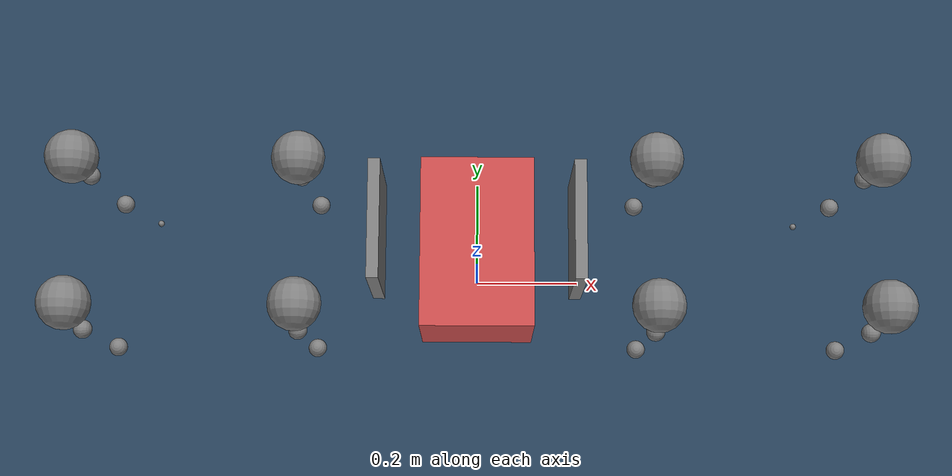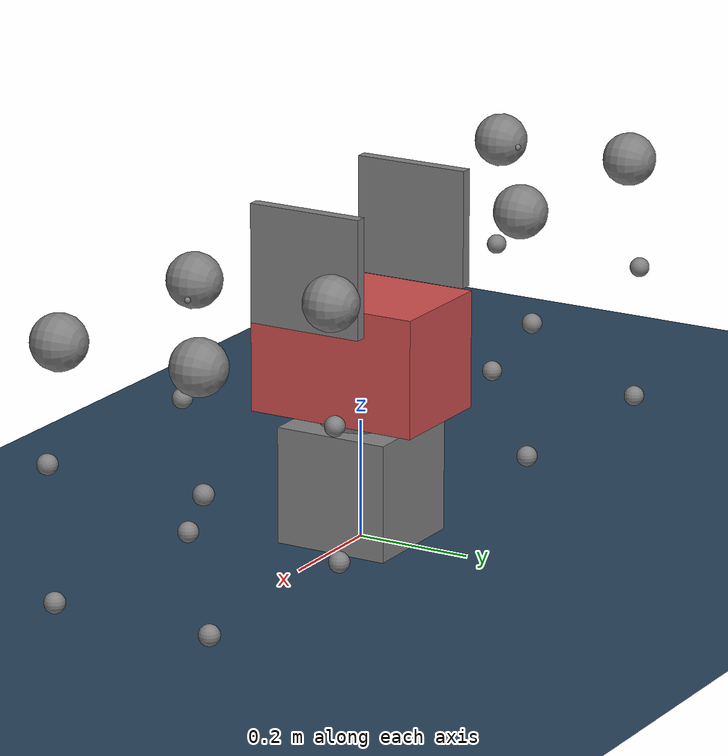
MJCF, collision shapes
<?xml version='1.0' encoding='UTF-8'?>
<mujoco model="go2 scene">
    <compiler angle="radian" meshdir="assets" autolimits="true" />
    <option iterations="2" ls_iterations="5" gravity="0.0 0.0 -9.81">
        <flag eulerdamp="disable" />
    </option>
    <statistic center="0 0 0.1" extent="0.8" />
    <visual>
        <headlight diffuse="0.6 0.6 0.6" ambient="0.3 0.3 0.3" specular="0 0 0" />
        <rgba haze="0.15 0.25 0.35 1" />
        <global azimuth="-130" elevation="-20" />
    </visual>
    <asset>
        <texture type="skybox" builtin="gradient" rgb1="0.3 0.5 0.7" rgb2="0 0 0" width="512"
            height="3072" />
        <texture type="2d" name="groundplane" builtin="checker" mark="edge" rgb1="0.2 0.3 0.4"
            rgb2="0.1 0.2 0.3" markrgb="0.8 0.8 0.8" width="300" height="300" />
        <material name="groundplane" texture="groundplane" texuniform="true" texrepeat="5 5"
            reflectance="0.2" />
        <material name="box_material" shininess="0.1" specular="0.5" roughness="0.3" />
    </asset>
    <default>
        <default class="go2">
            <geom friction="0.6" margin="0.001" condim="1" />
            <joint axis="0 1 0" damping="0.65" armature="0.01" />
            <default class="abduction">
                <joint axis="1 0 0" range="-1.0472 1.0472" />
            </default>
            <default class="hip">
                <default class="front_hip">
                    <joint range="-1.5708 3.4907" />
                </default>
                <default class="back_hip">
                    <joint range="-0.5236 4.5379" />
                </default>
            </default>
            <default class="knee">
                <joint range="-2.7227 -0.83776" />
            </default>
            <default class="visual">
                <geom type="mesh" contype="0" conaffinity="0" group="2" />
            </default>
            <default class="go2foot">
                <site group="1" pos="-0.002 0 -0.213" />
                <geom rgba="0.231373 0.380392 0.705882 1" />
            </default>
            <default class="collision">
                <geom group="3" contype="0" conaffinity="1" />
                <default class="foot">
                    <geom type="sphere" size="0.0175" pos="-0.002 0 -0.213" solimp="0.015 1 0.031"
                        friction="0.7 0.02 0.01" condim="3" />
                </default>
            </default>
        </default>
    </default>
    <asset>
        <material name="metal" rgba=".9 .95 .95 1" />
        <material name="black" rgba="0 0 0 1" />
        <material name="white" rgba="1 1 1 1" />
        <material name="gray" rgba="0.671705 0.692426 0.774270 1" />
        <mesh file="base_0.obj" />
        <mesh file="base_1.obj" />
        <mesh file="base_2.obj" />
        <mesh file="base_3.obj" />
        <mesh file="base_4.obj" />
        <mesh file="hip_0.obj" />
        <mesh file="hip_1.obj" />
        <mesh file="thigh_0.obj" />
        <mesh file="thigh_1.obj" />
        <mesh file="thigh_mirror_0.obj" />
        <mesh file="thigh_mirror_1.obj" />
        <mesh file="calf_0.obj" />
        <mesh file="calf_1.obj" />
        <mesh file="calf_mirror_0.obj" />
        <mesh file="calf_mirror_1.obj" />
        <mesh file="foot.obj" />
    </asset>
    <worldbody>
        <geom name="floor" size="0 0 0.05" type="plane" material="groundplane" />
        <body name="base_1" pos="-0.5 0 0.5" quat="1 0 0 0" childclass="go2">
            <inertial pos="0.021112 0 -0.005366" quat="-0.000543471 0.713435 -0.00173769 0.700719"
                mass="6.921" diaginertia="0.107027 0.0980771 0.0244531" />
            <joint name="base_free_joint_1" type="free" />
            <geom mesh="base_0" material="black" class="visual" />
            <geom mesh="base_1" material="black" class="visual" />
            <geom mesh="base_2" material="black" class="visual" />
            <geom mesh="base_3" material="white" class="visual" />
            <geom mesh="base_4" material="gray" class="visual" />
            <geom size="0.01 0.1 0.1" pos="0.33 0 0" type="box" class="collision" />
            <site name="imu_1" pos="-0.02557 0 0.04232" />
            <body name="FR_hip_1" pos="0.1934 -0.0465 0">
                <inertial pos="-0.0054 -0.00194 -0.000105"
                    quat="0.498237 0.505462 0.499245 0.497014" mass="0.678"
                    diaginertia="0.00088403 0.000596003 0.000479967" />
                <joint name="FR_hip_joint_1" class="abduction" />
                <geom mesh="hip_0" material="metal" class="visual" quat="4.63268e-05 1 0 0" />
                <geom mesh="hip_1" material="gray" class="visual" quat="4.63268e-05 1 0 0" />
                <body name="FR_thigh_1" pos="0 -0.0955 0">
                    <inertial pos="-0.00374 0.0223 -0.0327"
                        quat="0.551623 -0.0200632 0.0847635 0.829533" mass="1.152"
                        diaginertia="0.00594973 0.00584149 0.000878787" />
                    <joint name="FR_thigh_joint_1" class="front_hip" />
                    <geom mesh="thigh_mirror_0" material="metal" class="visual" />
                    <geom mesh="thigh_mirror_1" material="gray" class="visual" />
                    <body name="FR_calf_1" pos="0 0 -0.213">
                        <inertial pos="0.00629595 0.000622121 -0.141417"
                            quat="0.703508 -0.00450087 0.00154099 0.710672" mass="0.241352"
                            diaginertia="0.0014901 0.00146356 5.31397e-05" />
                        <joint name="FR_calf_joint_1" class="knee" />
                        <geom mesh="calf_mirror_0" material="gray" class="visual" />
                        <geom mesh="calf_mirror_1" material="black" class="visual" />
                        <geom pos="0 0 -0.213" mesh="foot" class="visual" material="black" />
                        <geom name="FR_1" class="foot" />
                        <site name="FR_foot_1" class="go2foot" />
                    </body>
                    <geom size="0.017 0.01225 0.017" pos="-0.015 0 -0.1955"
                        quat="0.707107 0 0.707107 0" class="collision" />
                </body>
                <geom size="0.046 0.02" pos="0 -0.08 0" quat="0.707107 0.707107 0 0"
                    class="collision" />
            </body>
            <body name="FL_hip_1" pos="0.1934 0.0465 0">
                <inertial pos="-0.0054 0.00194 -0.000105" quat="0.497014 0.499245 0.505462 0.498237"
                    mass="0.678" diaginertia="0.00088403 0.000596003 0.000479967" />
                <joint name="FL_hip_joint_1" class="abduction" />
                <geom mesh="hip_0" material="metal" class="visual" />
                <geom mesh="hip_1" material="gray" class="visual" />
                <body name="FL_thigh_1" pos="0 0.0955 0">
                    <inertial pos="-0.00374 -0.0223 -0.0327"
                        quat="0.829533 0.0847635 -0.0200632 0.551623" mass="1.152"
                        diaginertia="0.00594973 0.00584149 0.000878787" />
                    <joint name="FL_thigh_joint_1" class="front_hip" />
                    <geom mesh="thigh_0" material="metal" class="visual" />
                    <geom mesh="thigh_1" material="gray" class="visual" />
                    <body name="FL_calf_1" pos="0 0 -0.213">
                        <inertial pos="0.00629595 -0.000622121 -0.141417"
                            quat="0.710672 0.00154099 -0.00450087 0.703508" mass="0.241352"
                            diaginertia="0.0014901 0.00146356 5.31397e-05" />
                        <joint name="FL_calf_joint_1" class="knee" />
                        <geom mesh="calf_0" material="gray" class="visual" />
                        <geom mesh="calf_1" material="black" class="visual" />
                        <geom pos="0 0 -0.213" mesh="foot" class="visual" material="black" />
                        <geom name="FL_1" class="foot" />
                        <site name="FL_foot_1" class="go2foot" />
                    </body>
                    <geom size="0.017 0.01225 0.017" pos="-0.015 0 -0.1955"
                        quat="0.707107 0 0.707107 0" class="collision" />
                </body>
                <geom size="0.046 0.02" pos="0 0.08 0" quat="0.707107 0.707107 0 0"
                    class="collision" />
            </body>
            <body name="RR_hip_1" pos="-0.1934 -0.0465 0">
                <inertial pos="0.0054 -0.00194 -0.000105" quat="0.499245 0.497014 0.498237 0.505462"
                    mass="0.678" diaginertia="0.00088403 0.000596003 0.000479967" />
                <joint name="RR_hip_joint_1" class="abduction" />
                <geom mesh="hip_0" material="metal" class="visual"
                    quat="2.14617e-09 4.63268e-05 4.63268e-05 -1" />
                <geom mesh="hip_1" material="gray" class="visual"
                    quat="2.14617e-09 4.63268e-05 4.63268e-05 -1" />
                <body name="RR_thigh_1" pos="0 -0.0955 0">
                    <inertial pos="-0.00374 0.0223 -0.0327"
                        quat="0.551623 -0.0200632 0.0847635 0.829533" mass="1.152"
                        diaginertia="0.00594973 0.00584149 0.000878787" />
                    <joint name="RR_thigh_joint_1" class="back_hip" />
                    <geom mesh="thigh_mirror_0" material="metal" class="visual" />
                    <geom mesh="thigh_mirror_1" material="gray" class="visual" />
                    <body name="RR_calf_1" pos="0 0 -0.213">
                        <inertial pos="0.00629595 0.000622121 -0.141417"
                            quat="0.703508 -0.00450087 0.00154099 0.710672" mass="0.241352"
                            diaginertia="0.0014901 0.00146356 5.31397e-05" />
                        <joint name="RR_calf_joint_1" class="knee" />
                        <geom mesh="calf_mirror_0" material="gray" class="visual" />
                        <geom mesh="calf_mirror_1" material="black" class="visual" />
                        <geom pos="0 0 -0.213" mesh="foot" class="visual" material="black" />
                        <geom name="RR_1" class="foot" />
                        <site name="RR_foot_1" class="go2foot" />
                    </body>
                    <geom size="0.017 0.01225 0.017" pos="-0.015 0 -0.1955"
                        quat="0.707107 0 0.707107 0" class="collision" />
                </body>
                <geom size="0.046 0.02" pos="0 -0.08 0" quat="0.707107 0.707107 0 0"
                    class="collision" />
            </body>
            <body name="RL_hip_1" pos="-0.1934 0.0465 0">
                <inertial pos="0.0054 0.00194 -0.000105" quat="0.505462 0.498237 0.497014 0.499245"
                    mass="0.678" diaginertia="0.00088403 0.000596003 0.000479967" />
                <joint name="RL_hip_joint_1" class="abduction" />
                <geom mesh="hip_0" material="metal" class="visual" quat="4.63268e-05 0 1 0" />
                <geom mesh="hip_1" material="gray" class="visual" quat="4.63268e-05 0 1 0" />
                <body name="RL_thigh_1" pos="0 0.0955 0">
                    <inertial pos="-0.00374 -0.0223 -0.0327"
                        quat="0.829533 0.0847635 -0.0200632 0.551623" mass="1.152"
                        diaginertia="0.00594973 0.00584149 0.000878787" />
                    <joint name="RL_thigh_joint_1" class="back_hip" />
                    <geom mesh="thigh_0" material="metal" class="visual" />
                    <geom mesh="thigh_1" material="gray" class="visual" />
                    <body name="RL_calf_1" pos="0 0 -0.213">
                        <inertial pos="0.00629595 -0.000622121 -0.141417"
                            quat="0.710672 0.00154099 -0.00450087 0.703508" mass="0.241352"
                            diaginertia="0.0014901 0.00146356 5.31397e-05" />
                        <joint name="RL_calf_joint_1" class="knee" />
                        <geom mesh="calf_0" material="gray" class="visual" />
                        <geom mesh="calf_1" material="black" class="visual" />
                        <geom pos="0 0 -0.213" mesh="foot" class="visual" material="black" />
                        <geom name="RL_1" class="foot" />
                        <site name="RL_foot_1" class="go2foot" />
                    </body>
                    <geom size="0.017 0.01225 0.017" pos="-0.015 0 -0.1955"
                        quat="0.707107 0 0.707107 0" class="collision" />
                </body>
                <geom size="0.046 0.02" pos="0 0.08 0" quat="0.707107 0.707107 0 0"
                    class="collision" />
            </body>
        </body>
        <body name="base_2" pos="0.5 0 0.5" quat="0 0 0 1" childclass="go2">
            <inertial pos="0.021112 0 -0.005366" quat="-0.000543471 0.713435 -0.00173769 0.700719"
                mass="6.921" diaginertia="0.107027 0.0980771 0.0244531" />
            <joint name="base_free_joint_2" type="free" />
            <geom mesh="base_0" material="black" class="visual" />
            <geom mesh="base_1" material="black" class="visual" />
            <geom mesh="base_2" material="black" class="visual" />
            <geom mesh="base_3" material="white" class="visual" />
            <geom mesh="base_4" material="gray" class="visual" />
            <geom size="0.01 0.1 0.1" pos="0.33 0 0" type="box" class="collision" />
            <site name="imu_2" pos="-0.02557 0 0.04232" />
            <body name="FR_hip_2" pos="0.1934 -0.0465 0">
                <inertial pos="-0.0054 -0.00194 -0.000105"
                    quat="0.498237 0.505462 0.499245 0.497014" mass="0.678"
                    diaginertia="0.00088403 0.000596003 0.000479967" />
                <joint name="FR_hip_joint_2" class="abduction" />
                <geom mesh="hip_0" material="metal" class="visual" quat="4.63268e-05 1 0 0" />
                <geom mesh="hip_1" material="gray" class="visual" quat="4.63268e-05 1 0 0" />
                <body name="FR_thigh_2" pos="0 -0.0955 0">
                    <inertial pos="-0.00374 0.0223 -0.0327"
                        quat="0.551623 -0.0200632 0.0847635 0.829533" mass="1.152"
                        diaginertia="0.00594973 0.00584149 0.000878787" />
                    <joint name="FR_thigh_joint_2" class="front_hip" />
                    <geom mesh="thigh_mirror_0" material="metal" class="visual" />
                    <geom mesh="thigh_mirror_1" material="gray" class="visual" />
                    <body name="FR_calf_2" pos="0 0 -0.213">
                        <inertial pos="0.00629595 0.000622121 -0.141417"
                            quat="0.703508 -0.00450087 0.00154099 0.710672" mass="0.241352"
                            diaginertia="0.0014901 0.00146356 5.31397e-05" />
                        <joint name="FR_calf_joint_2" class="knee" />
                        <geom mesh="calf_mirror_0" material="gray" class="visual" />
                        <geom mesh="calf_mirror_1" material="black" class="visual" />
                        <geom pos="0 0 -0.213" mesh="foot" class="visual" material="black" />
                        <geom name="FR_2" class="foot" />
                        <site name="FR_foot_2" class="go2foot" />
                    </body>
                    <geom size="0.017 0.01225 0.017" pos="-0.015 0 -0.1955"
                        quat="0.707107 0 0.707107 0" class="collision" />
                </body>
                <geom size="0.046 0.02" pos="0 -0.08 0" quat="0.707107 0.707107 0 0"
                    class="collision" />
            </body>
            <body name="FL_hip_2" pos="0.1934 0.0465 0">
                <inertial pos="-0.0054 0.00194 -0.000105" quat="0.497014 0.499245 0.505462 0.498237"
                    mass="0.678" diaginertia="0.00088403 0.000596003 0.000479967" />
                <joint name="FL_hip_joint_2" class="abduction" />
                <geom mesh="hip_0" material="metal" class="visual" />
                <geom mesh="hip_1" material="gray" class="visual" />
                <body name="FL_thigh_2" pos="0 0.0955 0">
                    <inertial pos="-0.00374 -0.0223 -0.0327"
                        quat="0.829533 0.0847635 -0.0200632 0.551623" mass="1.152"
                        diaginertia="0.00594973 0.00584149 0.000878787" />
                    <joint name="FL_thigh_joint_2" class="front_hip" />
                    <geom mesh="thigh_0" material="metal" class="visual" />
                    <geom mesh="thigh_1" material="gray" class="visual" />
                    <body name="FL_calf_2" pos="0 0 -0.213">
                        <inertial pos="0.00629595 -0.000622121 -0.141417"
                            quat="0.710672 0.00154099 -0.00450087 0.703508" mass="0.241352"
                            diaginertia="0.0014901 0.00146356 5.31397e-05" />
                        <joint name="FL_calf_joint_2" class="knee" />
                        <geom mesh="calf_0" material="gray" class="visual" />
                        <geom mesh="calf_1" material="black" class="visual" />
                        <geom pos="0 0 -0.213" mesh="foot" class="visual" material="black" />
                        <geom name="FL_2" class="foot" />
                        <site name="FL_foot_2" class="go2foot" />
                    </body>
                    <geom size="0.017 0.01225 0.017" pos="-0.015 0 -0.1955"
                        quat="0.707107 0 0.707107 0" class="collision" />
                </body>
                <geom size="0.046 0.02" pos="0 0.08 0" quat="0.707107 0.707107 0 0"
                    class="collision" />
            </body>
            <body name="RR_hip_2" pos="-0.1934 -0.0465 0">
                <inertial pos="0.0054 -0.00194 -0.000105" quat="0.499245 0.497014 0.498237 0.505462"
                    mass="0.678" diaginertia="0.00088403 0.000596003 0.000479967" />
                <joint name="RR_hip_joint_2" class="abduction" />
                <geom mesh="hip_0" material="metal" class="visual"
                    quat="2.14617e-09 4.63268e-05 4.63268e-05 -1" />
                <geom mesh="hip_1" material="gray" class="visual"
                    quat="2.14617e-09 4.63268e-05 4.63268e-05 -1" />
                <body name="RR_thigh_2" pos="0 -0.0955 0">
                    <inertial pos="-0.00374 0.0223 -0.0327"
                        quat="0.551623 -0.0200632 0.0847635 0.829533" mass="1.152"
                        diaginertia="0.00594973 0.00584149 0.000878787" />
                    <joint name="RR_thigh_joint_2" class="back_hip" />
                    <geom mesh="thigh_mirror_0" material="metal" class="visual" />
                    <geom mesh="thigh_mirror_1" material="gray" class="visual" />
                    <body name="RR_calf_2" pos="0 0 -0.213">
                        <inertial pos="0.00629595 0.000622121 -0.141417"
                            quat="0.703508 -0.00450087 0.00154099 0.710672" mass="0.241352"
                            diaginertia="0.0014901 0.00146356 5.31397e-05" />
                        <joint name="RR_calf_joint_2" class="knee" />
                        <geom mesh="calf_mirror_0" material="gray" class="visual" />
                        <geom mesh="calf_mirror_1" material="black" class="visual" />
                        <geom pos="0 0 -0.213" mesh="foot" class="visual" material="black" />
                        <geom name="RR_2" class="foot" />
                        <site name="RR_foot_2" class="go2foot" />
                    </body>
                    <geom size="0.017 0.01225 0.017" pos="-0.015 0 -0.1955"
                        quat="0.707107 0 0.707107 0" class="collision" />
                </body>
                <geom size="0.046 0.02" pos="0 -0.08 0" quat="0.707107 0.707107 0 0"
                    class="collision" />
            </body>
            <body name="RL_hip_2" pos="-0.1934 0.0465 0">
                <inertial pos="0.0054 0.00194 -0.000105" quat="0.505462 0.498237 0.497014 0.499245"
                    mass="0.678" diaginertia="0.00088403 0.000596003 0.000479967" />
                <joint name="RL_hip_joint_2" class="abduction" />
                <geom mesh="hip_0" material="metal" class="visual" quat="4.63268e-05 0 1 0" />
                <geom mesh="hip_1" material="gray" class="visual" quat="4.63268e-05 0 1 0" />
                <body name="RL_thigh_2" pos="0 0.0955 0">
                    <inertial pos="-0.00374 -0.0223 -0.0327"
                        quat="0.829533 0.0847635 -0.0200632 0.551623" mass="1.152"
                        diaginertia="0.00594973 0.00584149 0.000878787" />
                    <joint name="RL_thigh_joint_2" class="back_hip" />
                    <geom mesh="thigh_0" material="metal" class="visual" />
                    <geom mesh="thigh_1" material="gray" class="visual" />
                    <body name="RL_calf_2" pos="0 0 -0.213">
                        <inertial pos="0.00629595 -0.000622121 -0.141417"
                            quat="0.710672 0.00154099 -0.00450087 0.703508" mass="0.241352"
                            diaginertia="0.0014901 0.00146356 5.31397e-05" />
                        <joint name="RL_calf_joint_2" class="knee" />
                        <geom mesh="calf_0" material="gray" class="visual" />
                        <geom mesh="calf_1" material="black" class="visual" />
                        <geom pos="0 0 -0.213" mesh="foot" class="visual" material="black" />
                        <geom name="RL_2" class="foot" />
                        <site name="RL_foot_2" class="go2foot" />
                    </body>
                    <geom size="0.017 0.01225 0.017" pos="-0.015 0 -0.1955"
                        quat="0.707107 0 0.707107 0" class="collision" />
                </body>
                <geom size="0.046 0.02" pos="0 0.08 0" quat="0.707107 0.707107 0 0"
                    class="collision" />
            </body>
        </body>
        <body name="box" pos="0 0 0.32">
            <camera name="track" pos="0.846 -1.465 0.916"
                xyaxes="0.866 0.500 0.000 -0.171 0.296 0.940" mode="trackcom" />
            <geom name="box_geom" type="box" size="0.1 0.15 0.1" rgba="0.8 0.3 0.3 1"
                friction="1.0 0.005 0.0001" />
            <inertial mass="1.0" pos="0 0 0" diaginertia="0.1 0.1 0.1" />
            <joint name="box_free" type="free" />
        </body>
        <!-- add a base to lift the above box -->
        <geom name="base" type="box" size="0.1 0.1 0.1" pos="0 0 0.1" />
        <body name="setpoint_1" pos="0 0 0.27">
            <joint name="setpoint_1_x" type="slide" pos="0 0 0.27" axis="1 0 0" />
            <joint name="setpoint_1_y" type="slide" pos="0 0 0.27" axis="0 1 0" />
            <geom size="0.1" type="sphere" class="visual" />
        </body>
        <body name="setpoint_2" pos="0 0 0.27">
            <joint name="setpoint_2_x" type="slide" pos="0 0 0.27" axis="1 0 0" />
            <joint name="setpoint_2_y" type="slide" pos="0 0 0.27" axis="0 1 0" />
            <geom size="0.1" type="sphere" class="visual" />
        </body>
    </worldbody>
    <actuator>
        <motor class="abduction" name="FR_hip_1" joint="FR_hip_joint_1" />
        <motor class="hip" name="FR_thigh_1" joint="FR_thigh_joint_1" />
        <motor class="knee" name="FR_calf_1" joint="FR_calf_joint_1" />
        <motor class="abduction" name="FL_hip_1" joint="FL_hip_joint_1" />
        <motor class="hip" name="FL_thigh_1" joint="FL_thigh_joint_1" />
        <motor class="knee" name="FL_calf_1" joint="FL_calf_joint_1" />
        <motor class="abduction" name="RR_hip_1" joint="RR_hip_joint_1" />
        <motor class="hip" name="RR_thigh_1" joint="RR_thigh_joint_1" />
        <motor class="knee" name="RR_calf_1" joint="RR_calf_joint_1" />
        <motor class="abduction" name="RL_hip_1" joint="RL_hip_joint_1" />
        <motor class="hip" name="RL_thigh_1" joint="RL_thigh_joint_1" />
        <motor class="knee" name="RL_calf_1" joint="RL_calf_joint_1" />
        <motor class="abduction" name="FR_hip_2" joint="FR_hip_joint_2" />
        <motor class="hip" name="FR_thigh_2" joint="FR_thigh_joint_2" />
        <motor class="knee" name="FR_calf_2" joint="FR_calf_joint_2" />
        <motor class="abduction" name="FL_hip_2" joint="FL_hip_joint_2" />
        <motor class="hip" name="FL_thigh_2" joint="FL_thigh_joint_2" />
        <motor class="knee" name="FL_calf_2" joint="FL_calf_joint_2" />
        <motor class="abduction" name="RR_hip_2" joint="RR_hip_joint_2" />
        <motor class="hip" name="RR_thigh_2" joint="RR_thigh_joint_2" />
        <motor class="knee" name="RR_calf_2" joint="RR_calf_joint_2" />
        <motor class="abduction" name="RL_hip_2" joint="RL_hip_joint_2" />
        <motor class="hip" name="RL_thigh_2" joint="RL_thigh_joint_2" />
        <motor class="knee" name="RL_calf_2" joint="RL_calf_joint_2" />
    </actuator>
    <keyframe>
        <key name="home"
            qpos="-0.5 0 0.27 1 0 0 0
                0 0.9 -1.8 0 0.9 -1.8 0 0.9 -1.8 0 0.9 -1.8
                0.5 0 0.27 0 0 0 1
                0 0.9 -1.8 0 0.9 -1.8 0 0.9 -1.8 0 0.9 -1.8
                0 0 0.32 1 0 0 0
                -0.6 0
                0.6 0" />
    </keyframe>
</mujoco>
